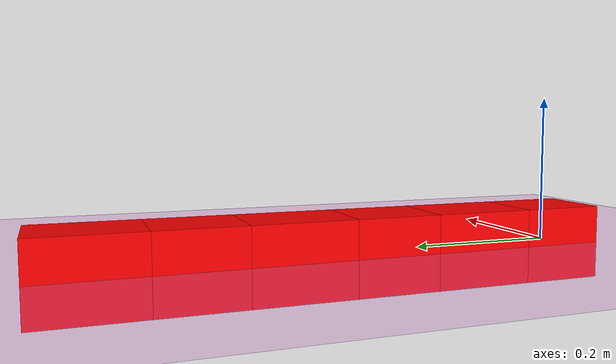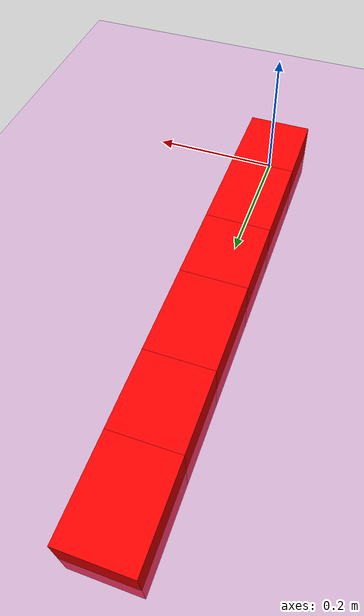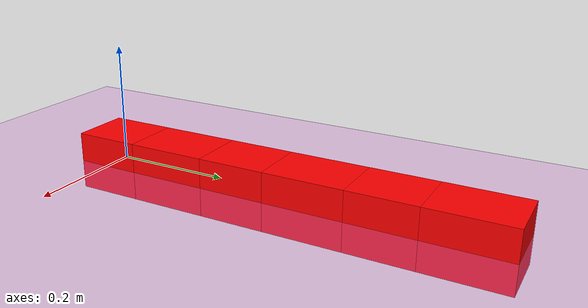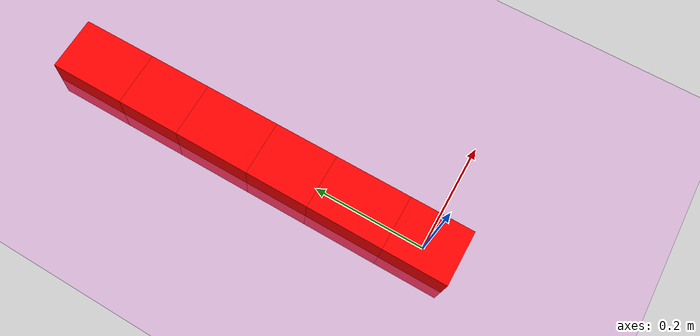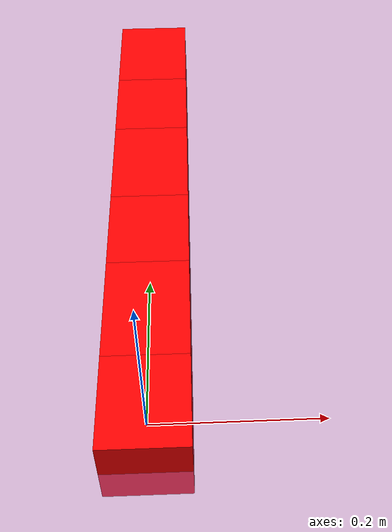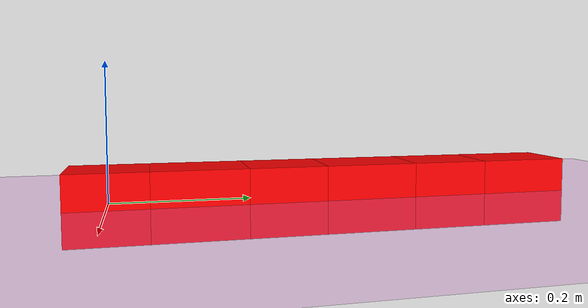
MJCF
<mujoco>
    <option gravity="0 0 -9.81"/>
    <worldbody>
        <light diffuse=".5 .5 .5" pos="0 0 3" dir="0 0 -1"/>
        <geom type="plane" size="5 5 0.1" rgba=".9 .5 .9 1"/>
        <body name="block0" pos="0 0 0">
            <joint type="free"/>
            <geom type="box" size="0.05 0.0568 0.05" rgba="1 0 0 1" euler="0 90 0"/>

            <body name="block1" pos="0 0.1246 0">
                <joint name="joint0" pos="0 -0.0678 0" type="hinge" axis="0 0 1" range="-15 0"/>
                <geom type="box" size="0.05 0.0678 0.05" rgba="1 0 0 1" euler="0 90 0"/>

                </body>

            <body name="block2" pos="0 0.2492 0">
                <joint name="joint1" pos="0 -0.0568 0" type="hinge" axis="0 0 1" range="-15 0"/>
                <geom type="box" size="0.05 0.0568 0.05" rgba="1 0 0 1" euler="0 90 0"/>

                </body>

            <body name="block3" pos="0 0.3738 0">
                <joint name="joint2" pos="0 -0.0678 0" type="hinge" axis="0 0 1" range="-15 0"/>
                <geom type="box" size="0.05 0.0678 0.05" rgba="1 0 0 1" euler="0 90 0"/>

                </body>

            <body name="block4" pos="0 0.4984 0">
                <joint name="joint3" pos="0 -0.0568 0" type="hinge" axis="0 0 1" range="-15 0"/>
                <geom type="box" size="0.05 0.0568 0.05" rgba="1 0 0 1" euler="0 90 0"/>

                </body>

            <body name="block5" pos="0 0.623 0">
                <joint name="joint4" pos="0 -0.0678 0" type="hinge" axis="0 0 1" range="-15 0"/>
                <geom type="box" size="0.05 0.0678 0.05" rgba="1 0 0 1" euler="0 90 0"/>

            </body>
        </body>
    </worldbody>
</mujoco>
